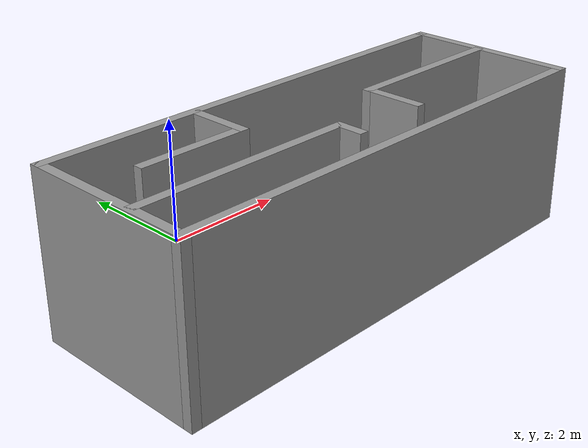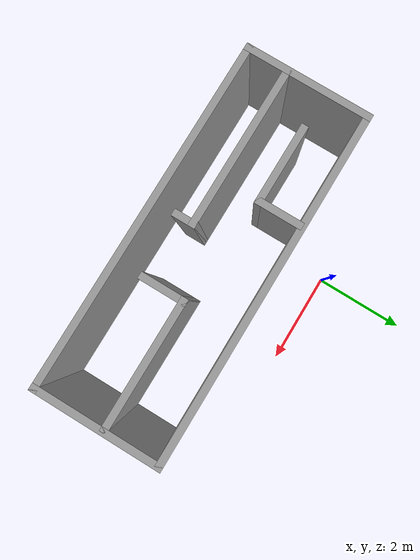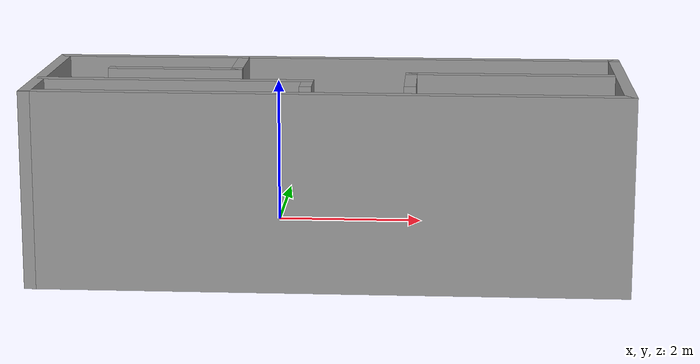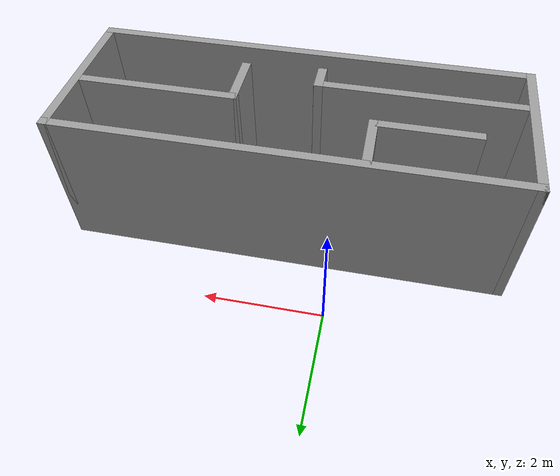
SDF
<?xml version='1.0'?>
<sdf version='1.7'>
  <model name='room2'>
    <pose>0.885 -1.8525 0 0 -0 0</pose>
    <link name='Wall_0'>
      <collision name='Wall_0_Collision'>
        <geometry>
          <box>
            <size>7.5 0.15 2.5</size>
          </box>
        </geometry>
        <pose>0 0 1.25 0 -0 0</pose>
      </collision>
      <visual name='Wall_0_Visual'>
        <pose>0 0 1.25 0 -0 0</pose>
        <geometry>
          <box>
            <size>7.5 0.15 2.5</size>
          </box>
        </geometry>
        <material>
          <script>
            <uri>file://media/materials/scripts/gazebo.material</uri>
            <name>Gazebo/Grey</name>
          </script>
          <ambient>1 1 1 1</ambient>
        </material>
        <meta>
          <layer>0</layer>
        </meta>
      </visual>
      <pose>0 0.8225 0 0 -0 0</pose>
    </link>
    <link name='Wall_1'>
      <collision name='Wall_1_Collision'>
        <geometry>
          <box>
            <size>2.75 0.15 2.5</size>
          </box>
        </geometry>
        <pose>0 0 1.25 0 -0 0</pose>
      </collision>
      <visual name='Wall_1_Visual'>
        <pose>0 0 1.25 0 -0 0</pose>
        <geometry>
          <box>
            <size>2.75 0.15 2.5</size>
          </box>
        </geometry>
        <material>
          <script>
            <uri>file://media/materials/scripts/gazebo.material</uri>
            <name>Gazebo/Grey</name>
          </script>
          <ambient>1 1 1 1</ambient>
        </material>
        <meta>
          <layer>0</layer>
        </meta>
      </visual>
      <pose>3.675 -0.4775 0 0 -0 -1.5708</pose>
    </link>
    <link name='Wall_11'>
      <collision name='Wall_11_Collision'>
        <geometry>
          <box>
            <size>2.75 0.15 2.5</size>
          </box>
        </geometry>
        <pose>0 0 1.25 0 -0 0</pose>
      </collision>
      <visual name='Wall_11_Visual'>
        <pose>0 0 1.25 0 -0 0</pose>
        <geometry>
          <box>
            <size>2.75 0.15 2.5</size>
          </box>
        </geometry>
        <material>
          <script>
            <uri>file://media/materials/scripts/gazebo.material</uri>
            <name>Gazebo/Grey</name>
          </script>
          <ambient>1 1 1 1</ambient>
        </material>
        <meta>
          <layer>0</layer>
        </meta>
      </visual>
      <pose>2.315 -0.3275 0 0 -0 0</pose>
    </link>
    <link name='Wall_13'>
      <collision name='Wall_13_Collision'>
        <geometry>
          <box>
            <size>1 0.15 2.5</size>
          </box>
        </geometry>
        <pose>0 0 1.25 0 -0 0</pose>
      </collision>
      <visual name='Wall_13_Visual'>
        <pose>0 0 1.25 0 -0 0</pose>
        <geometry>
          <box>
            <size>1 0.15 2.5</size>
          </box>
        </geometry>
        <material>
          <script>
            <uri>file://media/materials/scripts/gazebo.material</uri>
            <name>Gazebo/Grey</name>
          </script>
          <ambient>1 1 1 1</ambient>
        </material>
        <meta>
          <layer>0</layer>
        </meta>
      </visual>
      <pose>1.015 -0.7525 0 0 -0 -1.5708</pose>
    </link>
    <link name='Wall_2'>
      <collision name='Wall_2_Collision'>
        <geometry>
          <box>
            <size>7.5 0.15 2.5</size>
          </box>
        </geometry>
        <pose>0 0 1.25 0 -0 0</pose>
      </collision>
      <visual name='Wall_2_Visual'>
        <pose>0 0 1.25 0 -0 0</pose>
        <geometry>
          <box>
            <size>7.5 0.15 2.5</size>
          </box>
        </geometry>
        <material>
          <script>
            <uri>file://media/materials/scripts/gazebo.material</uri>
            <name>Gazebo/Grey</name>
          </script>
          <ambient>1 1 1 1</ambient>
        </material>
        <meta>
          <layer>0</layer>
        </meta>
      </visual>
      <pose>0 -1.7775 0 0 -0 3.14159</pose>
    </link>
    <link name='Wall_3'>
      <collision name='Wall_3_Collision'>
        <geometry>
          <box>
            <size>2.75 0.15 2.5</size>
          </box>
        </geometry>
        <pose>0 0 1.25 0 -0 0</pose>
      </collision>
      <visual name='Wall_3_Visual'>
        <pose>0 0 1.25 0 -0 0</pose>
        <geometry>
          <box>
            <size>2.75 0.15 2.5</size>
          </box>
        </geometry>
        <material>
          <script>
            <uri>file://media/materials/scripts/gazebo.material</uri>
            <name>Gazebo/Grey</name>
          </script>
          <ambient>1 1 1 1</ambient>
        </material>
        <meta>
          <layer>0</layer>
        </meta>
      </visual>
      <pose>-3.675 -0.4775 0 0 -0 1.5708</pose>
    </link>
    <link name='Wall_5'>
      <collision name='Wall_5_Collision'>
        <geometry>
          <box>
            <size>1 0.15 2.5</size>
          </box>
        </geometry>
        <pose>0 0 1.25 0 -0 0</pose>
      </collision>
      <visual name='Wall_5_Visual'>
        <pose>0 0 1.25 0 -0 0</pose>
        <geometry>
          <box>
            <size>1 0.15 2.5</size>
          </box>
        </geometry>
        <material>
          <script>
            <uri>file://media/materials/scripts/gazebo.material</uri>
            <name>Gazebo/Grey</name>
          </script>
          <ambient>1 1 1 1</ambient>
        </material>
        <meta>
          <layer>0</layer>
        </meta>
      </visual>
      <pose>-1.255 0.3275 0 0 -0 -1.5708</pose>
    </link>
    <link name='Wall_6'>
      <collision name='Wall_6_Collision'>
        <geometry>
          <box>
            <size>1.75 0.15 2.5</size>
          </box>
        </geometry>
        <pose>0 0 1.25 0 -0 0</pose>
      </collision>
      <visual name='Wall_6_Visual'>
        <pose>0 0 1.25 0 -0 0</pose>
        <geometry>
          <box>
            <size>1.75 0.15 2.5</size>
          </box>
        </geometry>
        <material>
          <script>
            <uri>file://media/materials/scripts/gazebo.material</uri>
            <name>Gazebo/Grey</name>
          </script>
          <ambient>1 1 1 1</ambient>
        </material>
        <meta>
          <layer>0</layer>
        </meta>
      </visual>
      <pose>-2.055 -0.0975 0 0 -0 3.14159</pose>
    </link>
    <link name='Wall_8'>
      <collision name='Wall_8_Collision'>
        <geometry>
          <box>
            <size>3.5 0.15 2.5</size>
          </box>
        </geometry>
        <pose>0 0 1.25 0 -0 0</pose>
      </collision>
      <visual name='Wall_8_Visual'>
        <pose>0 0 1.25 0 -0 0</pose>
        <geometry>
          <box>
            <size>3.5 0.15 2.5</size>
          </box>
        </geometry>
        <material>
          <script>
            <uri>file://media/materials/scripts/gazebo.material</uri>
            <name>Gazebo/Grey</name>
          </script>
          <ambient>1 1 1 1</ambient>
        </material>
        <meta>
          <layer>0</layer>
        </meta>
      </visual>
      <pose>-1.95 -0.9175 0 0 -0 0</pose>
    </link>
    <link name='Wall_9'>
      <collision name='Wall_9_Collision'>
        <geometry>
          <box>
            <size>0.5 0.15 2.5</size>
          </box>
        </geometry>
        <pose>0 0 1.25 0 -0 0</pose>
      </collision>
      <visual name='Wall_9_Visual'>
        <pose>0 0 1.25 0 -0 0</pose>
        <geometry>
          <box>
            <size>0.5 0.15 2.5</size>
          </box>
        </geometry>
        <material>
          <script>
            <uri>file://media/materials/scripts/gazebo.material</uri>
            <name>Gazebo/Grey</name>
          </script>
          <ambient>1 1 1 1</ambient>
        </material>
        <meta>
          <layer>0</layer>
        </meta>
      </visual>
      <pose>-0.275 -1.0925 0 0 -0 -1.5708</pose>
    </link>
    <static>1</static>
  </model>
</sdf>
